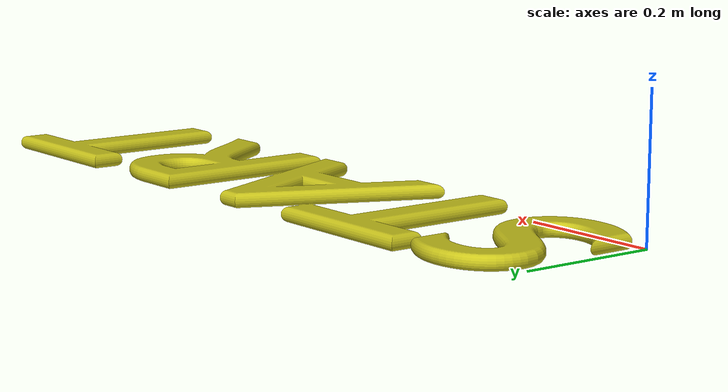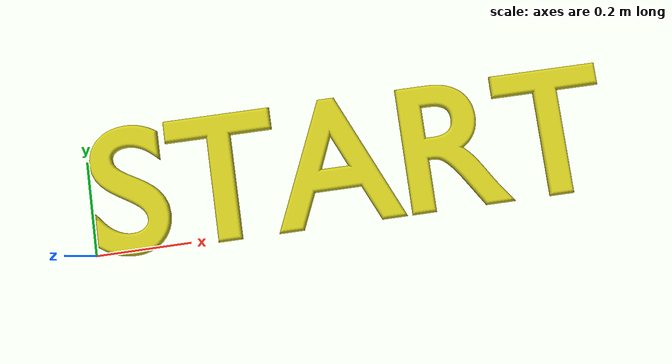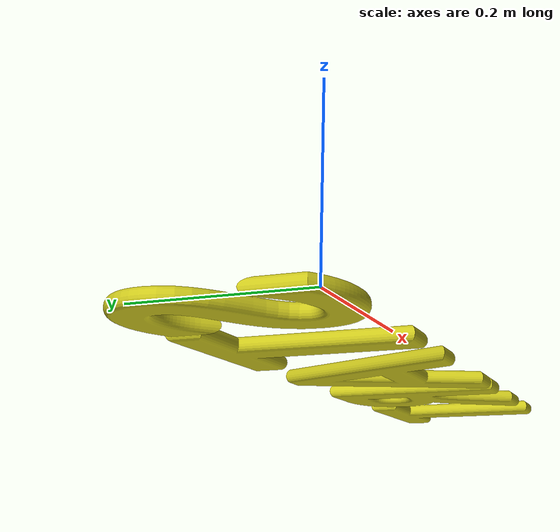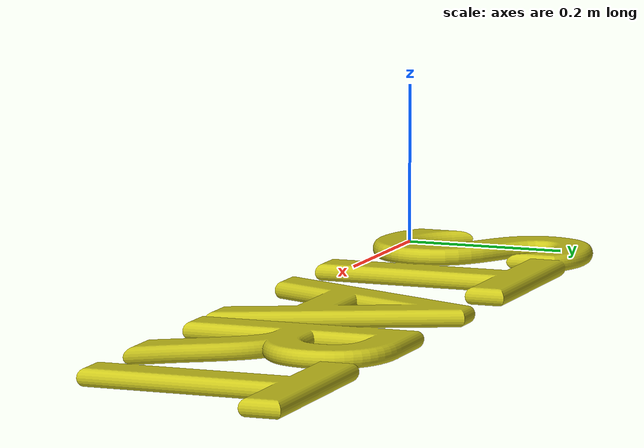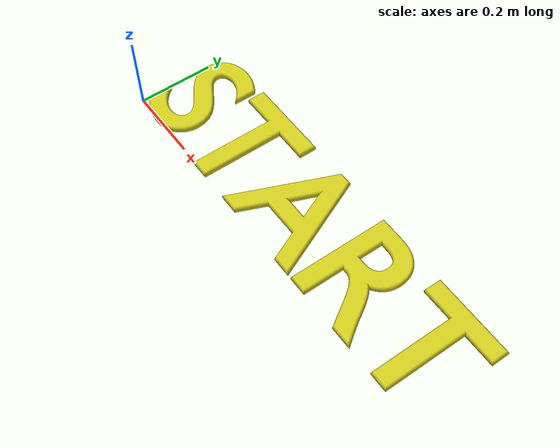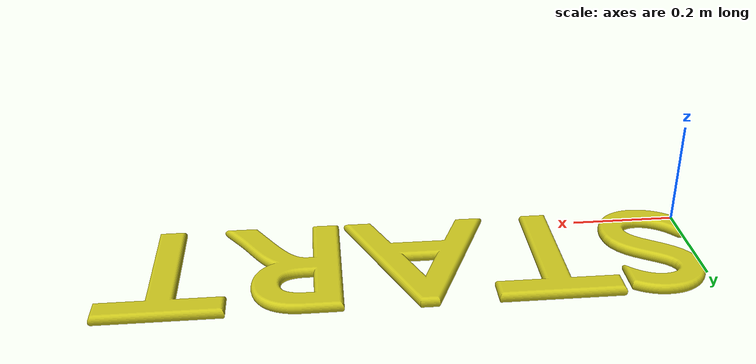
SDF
<?xml version="1.0" ?>
<sdf version='1.5'>
<model name='start'>
<static>true</static>
<link name="link">
   <pose frame=''>0 0 0.01 0 0 0</pose>
  <visual name='startV'>
    <cast_shadows>false</cast_shadows>
    <geometry>
      <mesh>
        <scale>1.0 1.0 1.0</scale>
        <uri>model://start/model.dae</uri>
      </mesh>
    </geometry>
    <material>
      <script>
        <name>start</name>
        <uri>model://start/model.dae</uri>
      </script>
    </material>
  </visual>
</link>
</model>
</sdf>
